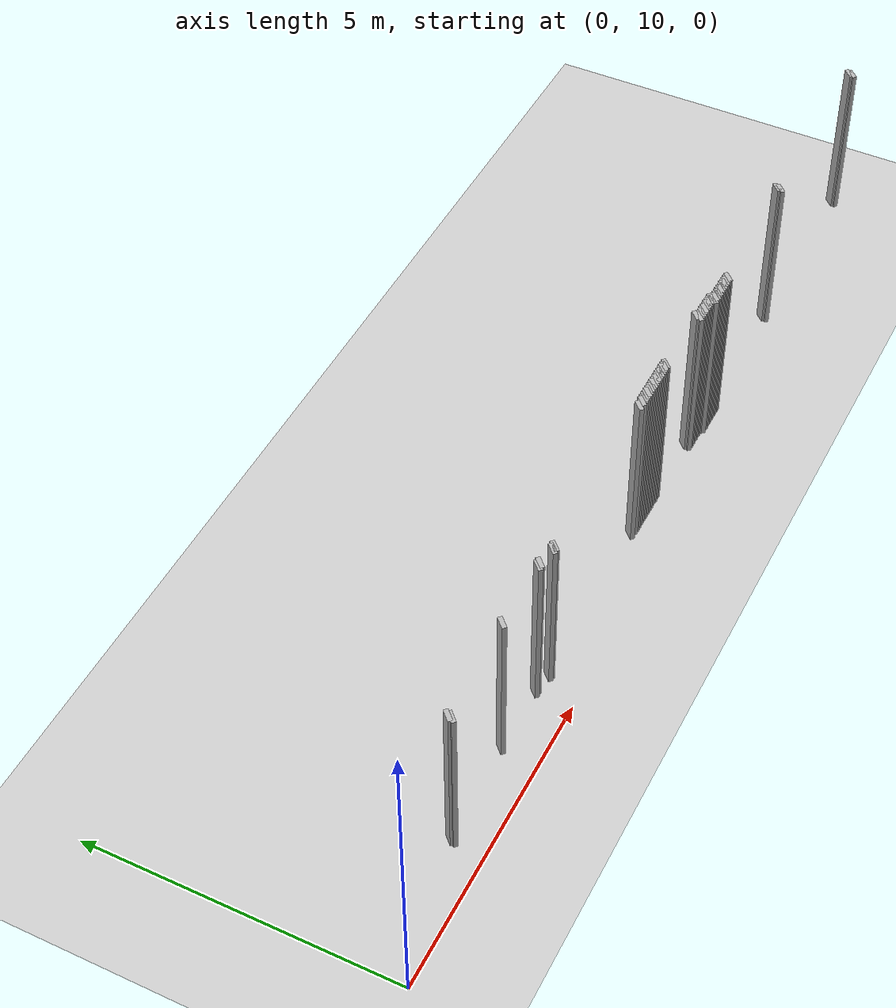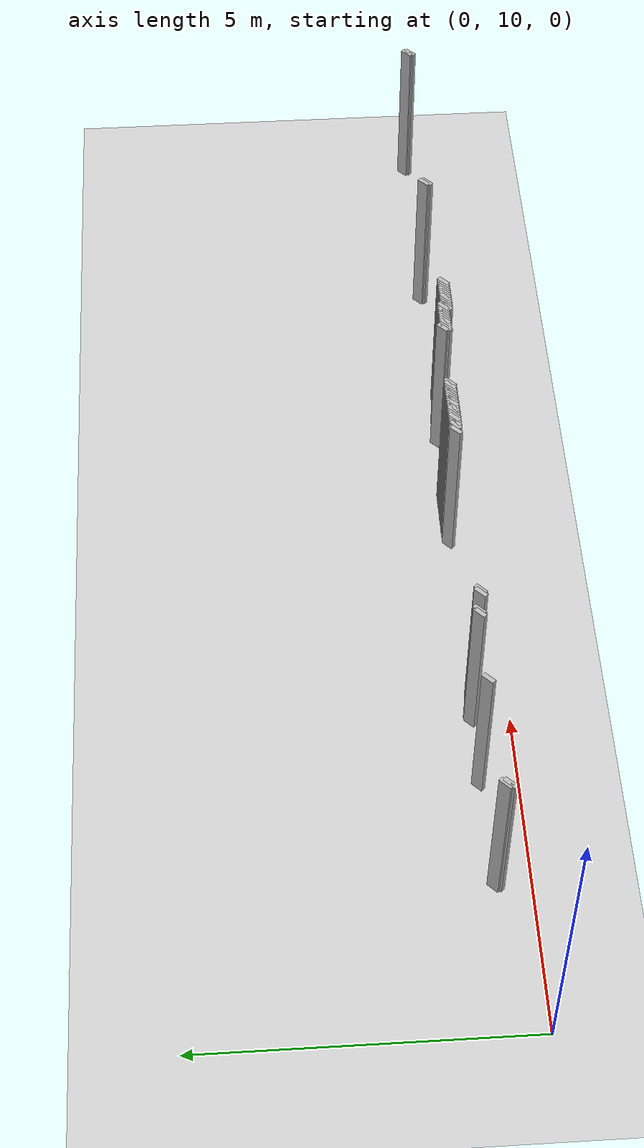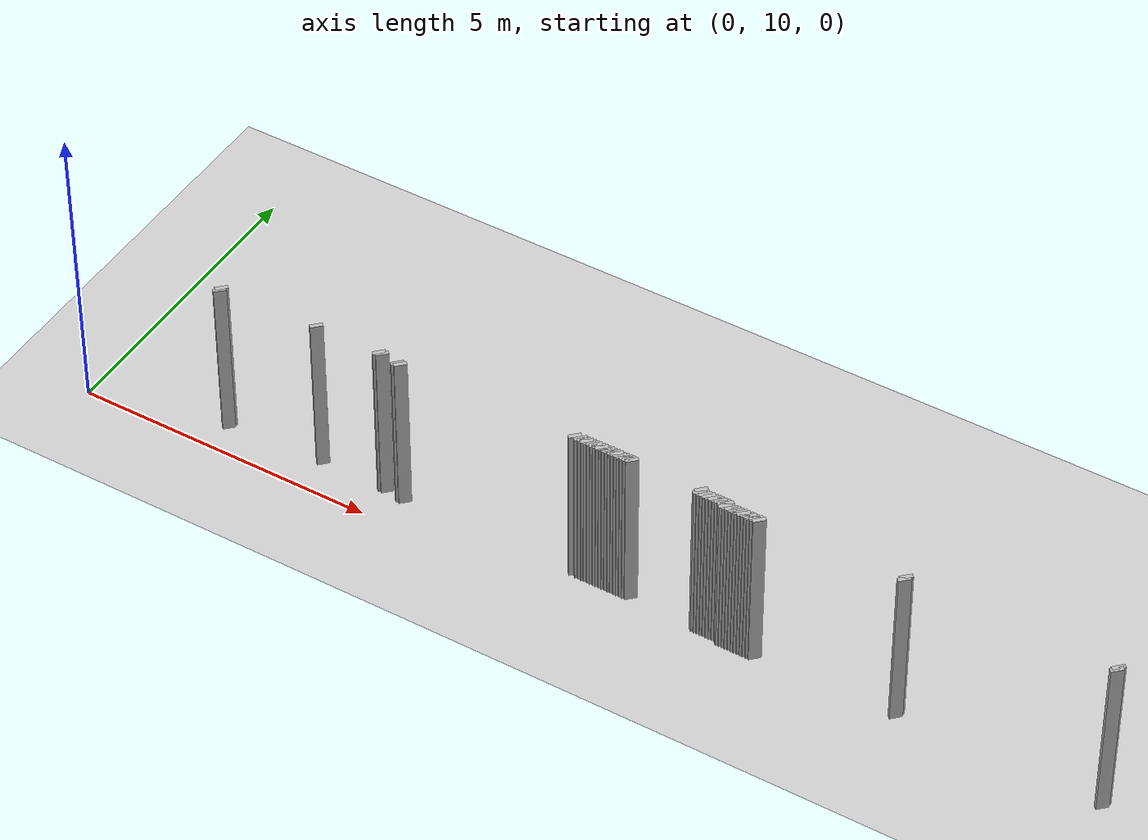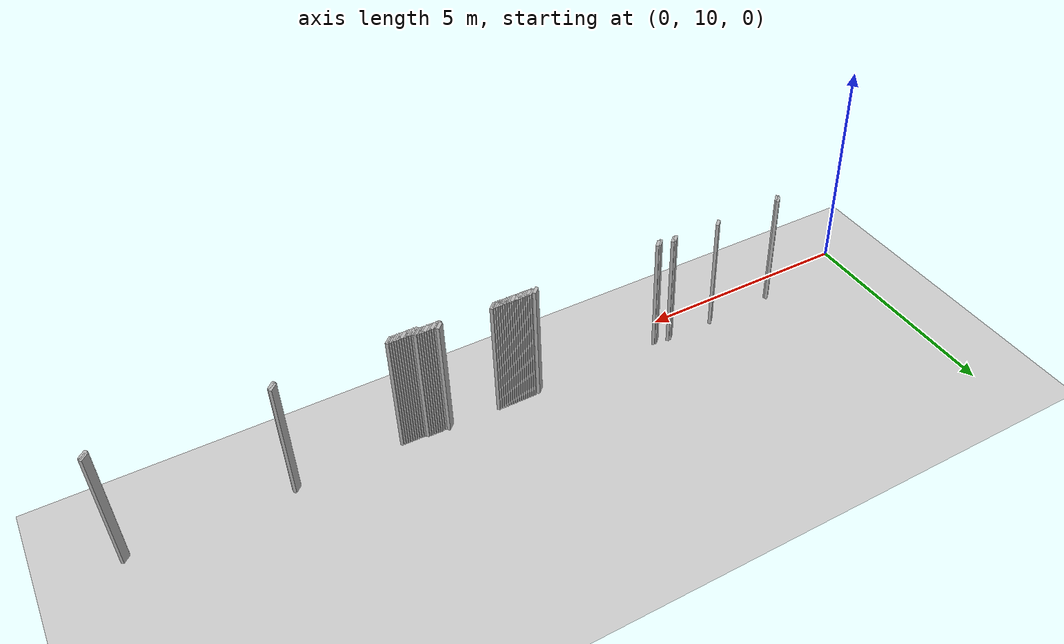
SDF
<sdf version="1.5">
 <world name="default">
  <include><uri>model://ground_plane</uri></include>
  <include><uri>model://sun</uri></include>
  <model name="grey_wall_1533">
   <static>1</static>
   <link name="link">
    <pose>3.9000000000000004 10.600000000000001  1.4 0 0 -0.7853981633974572</pose>
    <collision name="collision">
     <geometry><box><size>0.07071067811865513 .2  2.8</size></box></geometry>
    </collision>
    <visual name="visual">
     <cast_shadows>0</cast_shadows>
     <geometry><box><size>0.07071067811865513 .2  2.8</size></box></geometry>
    </visual>
   </link>
  </model>
  <model name="grey_wall_1534">
   <static>1</static>
   <link name="link">
    <pose>5.0 10.600000000000001  1.4 0 0 -0.7853981633974483</pose>
    <collision name="collision">
     <geometry><box><size>0.07071067811865576 .2  2.8</size></box></geometry>
    </collision>
    <visual name="visual">
     <cast_shadows>0</cast_shadows>
     <geometry><box><size>0.07071067811865576 .2  2.8</size></box></geometry>
    </visual>
   </link>
  </model>
  <model name="grey_wall_1535">
   <static>1</static>
   <link name="link">
    <pose>5.050000000000001 10.600000000000001  1.4 0 0 -0.7853981633974483</pose>
    <collision name="collision">
     <geometry><box><size>0.07071067811865576 .2  2.8</size></box></geometry>
    </collision>
    <visual name="visual">
     <cast_shadows>0</cast_shadows>
     <geometry><box><size>0.07071067811865576 .2  2.8</size></box></geometry>
    </visual>
   </link>
  </model>
  <model name="grey_wall_1536">
   <static>1</static>
   <link name="link">
    <pose>8.35 10.600000000000001  1.4 0 0 -0.7853981633974483</pose>
    <collision name="collision">
     <geometry><box><size>0.07071067811865576 .2  2.8</size></box></geometry>
    </collision>
    <visual name="visual">
     <cast_shadows>0</cast_shadows>
     <geometry><box><size>0.07071067811865576 .2  2.8</size></box></geometry>
    </visual>
   </link>
  </model>
  <model name="grey_wall_1537">
   <static>1</static>
   <link name="link">
    <pose>8.450000000000001 10.600000000000001  1.4 0 0 -0.7853981633974483</pose>
    <collision name="collision">
     <geometry><box><size>0.07071067811865576 .2  2.8</size></box></geometry>
    </collision>
    <visual name="visual">
     <cast_shadows>0</cast_shadows>
     <geometry><box><size>0.07071067811865576 .2  2.8</size></box></geometry>
    </visual>
   </link>
  </model>
  <model name="grey_wall_1538">
   <static>1</static>
   <link name="link">
    <pose>8.5 10.600000000000001  1.4 0 0 -0.7853981633974483</pose>
    <collision name="collision">
     <geometry><box><size>0.07071067811865576 .2  2.8</size></box></geometry>
    </collision>
    <visual name="visual">
     <cast_shadows>0</cast_shadows>
     <geometry><box><size>0.07071067811865576 .2  2.8</size></box></geometry>
    </visual>
   </link>
  </model>
  <model name="grey_wall_1539">
   <static>1</static>
   <link name="link">
    <pose>8.55 10.600000000000001  1.4 0 0 -0.7853981633974483</pose>
    <collision name="collision">
     <geometry><box><size>0.07071067811865576 .2  2.8</size></box></geometry>
    </collision>
    <visual name="visual">
     <cast_shadows>0</cast_shadows>
     <geometry><box><size>0.07071067811865576 .2  2.8</size></box></geometry>
    </visual>
   </link>
  </model>
  <model name="grey_wall_1540">
   <static>1</static>
   <link name="link">
    <pose>8.6 10.600000000000001  1.4 0 0 -0.7853981633974483</pose>
    <collision name="collision">
     <geometry><box><size>0.07071067811865576 .2  2.8</size></box></geometry>
    </collision>
    <visual name="visual">
     <cast_shadows>0</cast_shadows>
     <geometry><box><size>0.07071067811865576 .2  2.8</size></box></geometry>
    </visual>
   </link>
  </model>
  <model name="grey_wall_1541">
   <static>1</static>
   <link name="link">
    <pose>8.65 10.600000000000001  1.4 0 0 -0.7853981633974483</pose>
    <collision name="collision">
     <geometry><box><size>0.07071067811865576 .2  2.8</size></box></geometry>
    </collision>
    <visual name="visual">
     <cast_shadows>0</cast_shadows>
     <geometry><box><size>0.07071067811865576 .2  2.8</size></box></geometry>
    </visual>
   </link>
  </model>
  <model name="grey_wall_1542">
   <static>1</static>
   <link name="link">
    <pose>8.700000000000001 10.600000000000001  1.4 0 0 -0.7853981633974483</pose>
    <collision name="collision">
     <geometry><box><size>0.07071067811865576 .2  2.8</size></box></geometry>
    </collision>
    <visual name="visual">
     <cast_shadows>0</cast_shadows>
     <geometry><box><size>0.07071067811865576 .2  2.8</size></box></geometry>
    </visual>
   </link>
  </model>
  <model name="grey_wall_1543">
   <static>1</static>
   <link name="link">
    <pose>8.75 10.600000000000001  1.4 0 0 -0.7853981633974483</pose>
    <collision name="collision">
     <geometry><box><size>0.07071067811865576 .2  2.8</size></box></geometry>
    </collision>
    <visual name="visual">
     <cast_shadows>0</cast_shadows>
     <geometry><box><size>0.07071067811865576 .2  2.8</size></box></geometry>
    </visual>
   </link>
  </model>
  <model name="grey_wall_1544">
   <static>1</static>
   <link name="link">
    <pose>8.8 10.600000000000001  1.4 0 0 -0.7853981633974483</pose>
    <collision name="collision">
     <geometry><box><size>0.07071067811865576 .2  2.8</size></box></geometry>
    </collision>
    <visual name="visual">
     <cast_shadows>0</cast_shadows>
     <geometry><box><size>0.07071067811865576 .2  2.8</size></box></geometry>
    </visual>
   </link>
  </model>
  <model name="grey_wall_1545">
   <static>1</static>
   <link name="link">
    <pose>8.85 10.600000000000001  1.4 0 0 -0.7853981633974483</pose>
    <collision name="collision">
     <geometry><box><size>0.07071067811865576 .2  2.8</size></box></geometry>
    </collision>
    <visual name="visual">
     <cast_shadows>0</cast_shadows>
     <geometry><box><size>0.07071067811865576 .2  2.8</size></box></geometry>
    </visual>
   </link>
  </model>
  <model name="grey_wall_1546">
   <static>1</static>
   <link name="link">
    <pose>8.9 10.600000000000001  1.4 0 0 -0.7853981633974483</pose>
    <collision name="collision">
     <geometry><box><size>0.07071067811865576 .2  2.8</size></box></geometry>
    </collision>
    <visual name="visual">
     <cast_shadows>0</cast_shadows>
     <geometry><box><size>0.07071067811865576 .2  2.8</size></box></geometry>
    </visual>
   </link>
  </model>
  <model name="grey_wall_1547">
   <static>1</static>
   <link name="link">
    <pose>8.950000000000001 10.600000000000001  1.4 0 0 -0.7853981633974483</pose>
    <collision name="collision">
     <geometry><box><size>0.07071067811865576 .2  2.8</size></box></geometry>
    </collision>
    <visual name="visual">
     <cast_shadows>0</cast_shadows>
     <geometry><box><size>0.07071067811865576 .2  2.8</size></box></geometry>
    </visual>
   </link>
  </model>
  <model name="grey_wall_1548">
   <static>1</static>
   <link name="link">
    <pose>9.0 10.600000000000001  1.4 0 0 -0.7853981633974483</pose>
    <collision name="collision">
     <geometry><box><size>0.07071067811865576 .2  2.8</size></box></geometry>
    </collision>
    <visual name="visual">
     <cast_shadows>0</cast_shadows>
     <geometry><box><size>0.07071067811865576 .2  2.8</size></box></geometry>
    </visual>
   </link>
  </model>
  <model name="grey_wall_1549">
   <static>1</static>
   <link name="link">
    <pose>9.05 10.600000000000001  1.4 0 0 -0.7853981633974483</pose>
    <collision name="collision">
     <geometry><box><size>0.07071067811865576 .2  2.8</size></box></geometry>
    </collision>
    <visual name="visual">
     <cast_shadows>0</cast_shadows>
     <geometry><box><size>0.07071067811865576 .2  2.8</size></box></geometry>
    </visual>
   </link>
  </model>
  <model name="grey_wall_1550">
   <static>1</static>
   <link name="link">
    <pose>9.1 10.600000000000001  1.4 0 0 -0.7853981633974483</pose>
    <collision name="collision">
     <geometry><box><size>0.07071067811865576 .2  2.8</size></box></geometry>
    </collision>
    <visual name="visual">
     <cast_shadows>0</cast_shadows>
     <geometry><box><size>0.07071067811865576 .2  2.8</size></box></geometry>
    </visual>
   </link>
  </model>
  <model name="grey_wall_1551">
   <static>1</static>
   <link name="link">
    <pose>9.15 10.600000000000001  1.4 0 0 -0.7853981633974483</pose>
    <collision name="collision">
     <geometry><box><size>0.07071067811865576 .2  2.8</size></box></geometry>
    </collision>
    <visual name="visual">
     <cast_shadows>0</cast_shadows>
     <geometry><box><size>0.07071067811865576 .2  2.8</size></box></geometry>
    </visual>
   </link>
  </model>
  <model name="grey_wall_1552">
   <static>1</static>
   <link name="link">
    <pose>9.200000000000001 10.600000000000001  1.4 0 0 -0.7853981633974483</pose>
    <collision name="collision">
     <geometry><box><size>0.07071067811865576 .2  2.8</size></box></geometry>
    </collision>
    <visual name="visual">
     <cast_shadows>0</cast_shadows>
     <geometry><box><size>0.07071067811865576 .2  2.8</size></box></geometry>
    </visual>
   </link>
  </model>
  <model name="grey_wall_1553">
   <static>1</static>
   <link name="link">
    <pose>9.25 10.600000000000001  1.4 0 0 -0.7853981633974483</pose>
    <collision name="collision">
     <geometry><box><size>0.07071067811865576 .2  2.8</size></box></geometry>
    </collision>
    <visual name="visual">
     <cast_shadows>0</cast_shadows>
     <geometry><box><size>0.07071067811865576 .2  2.8</size></box></geometry>
    </visual>
   </link>
  </model>
  <model name="grey_wall_1554">
   <static>1</static>
   <link name="link">
    <pose>9.3 10.600000000000001  1.4 0 0 -0.7853981633974483</pose>
    <collision name="collision">
     <geometry><box><size>0.07071067811865576 .2  2.8</size></box></geometry>
    </collision>
    <visual name="visual">
     <cast_shadows>0</cast_shadows>
     <geometry><box><size>0.07071067811865576 .2  2.8</size></box></geometry>
    </visual>
   </link>
  </model>
  <model name="grey_wall_1555">
   <static>1</static>
   <link name="link">
    <pose>10.450000000000001 10.600000000000001  1.4 0 0 -0.7853981633974483</pose>
    <collision name="collision">
     <geometry><box><size>0.07071067811865576 .2  2.8</size></box></geometry>
    </collision>
    <visual name="visual">
     <cast_shadows>0</cast_shadows>
     <geometry><box><size>0.07071067811865576 .2  2.8</size></box></geometry>
    </visual>
   </link>
  </model>
  <model name="grey_wall_1556">
   <static>1</static>
   <link name="link">
    <pose>13.75 10.600000000000001  1.4 0 0 -0.7853981633974483</pose>
    <collision name="collision">
     <geometry><box><size>0.07071067811865576 .2  2.8</size></box></geometry>
    </collision>
    <visual name="visual">
     <cast_shadows>0</cast_shadows>
     <geometry><box><size>0.07071067811865576 .2  2.8</size></box></geometry>
    </visual>
   </link>
  </model>
  <model name="grey_wall_1557">
   <static>1</static>
   <link name="link">
    <pose>17.05 10.600000000000001  1.4 0 0 -0.7853981633974838</pose>
    <collision name="collision">
     <geometry><box><size>0.07071067811865325 .2  2.8</size></box></geometry>
    </collision>
    <visual name="visual">
     <cast_shadows>0</cast_shadows>
     <geometry><box><size>0.07071067811865325 .2  2.8</size></box></geometry>
    </visual>
   </link>
  </model>
  <model name="grey_wall_1558">
   <static>1</static>
   <link name="link">
    <pose>2.25 10.55  1.4 0 0 -0.7853981633974572</pose>
    <collision name="collision">
     <geometry><box><size>0.07071067811865513 .2  2.8</size></box></geometry>
    </collision>
    <visual name="visual">
     <cast_shadows>0</cast_shadows>
     <geometry><box><size>0.07071067811865513 .2  2.8</size></box></geometry>
    </visual>
   </link>
  </model>
  <model name="grey_wall_1559">
   <static>1</static>
   <link name="link">
    <pose>5.3500000000000005 10.55  1.4 0 0 -0.7853981633974483</pose>
    <collision name="collision">
     <geometry><box><size>0.07071067811865576 .2  2.8</size></box></geometry>
    </collision>
    <visual name="visual">
     <cast_shadows>0</cast_shadows>
     <geometry><box><size>0.07071067811865576 .2  2.8</size></box></geometry>
    </visual>
   </link>
  </model>
  <model name="grey_wall_1560">
   <static>1</static>
   <link name="link">
    <pose>5.4 10.55  1.4 0 0 -0.7853981633974483</pose>
    <collision name="collision">
     <geometry><box><size>0.07071067811865576 .2  2.8</size></box></geometry>
    </collision>
    <visual name="visual">
     <cast_shadows>0</cast_shadows>
     <geometry><box><size>0.07071067811865576 .2  2.8</size></box></geometry>
    </visual>
   </link>
  </model>
  <model name="grey_wall_1561">
   <static>1</static>
   <link name="link">
    <pose>10.450000000000001 10.55  1.4 0 0 -0.7853981633974483</pose>
    <collision name="collision">
     <geometry><box><size>0.07071067811865576 .2  2.8</size></box></geometry>
    </collision>
    <visual name="visual">
     <cast_shadows>0</cast_shadows>
     <geometry><box><size>0.07071067811865576 .2  2.8</size></box></geometry>
    </visual>
   </link>
  </model>
  <model name="grey_wall_1562">
   <static>1</static>
   <link name="link">
    <pose>10.5 10.55  1.4 0 0 -0.7853981633974483</pose>
    <collision name="collision">
     <geometry><box><size>0.07071067811865576 .2  2.8</size></box></geometry>
    </collision>
    <visual name="visual">
     <cast_shadows>0</cast_shadows>
     <geometry><box><size>0.07071067811865576 .2  2.8</size></box></geometry>
    </visual>
   </link>
  </model>
  <model name="grey_wall_1563">
   <static>1</static>
   <link name="link">
    <pose>10.55 10.55  1.4 0 0 -0.7853981633974483</pose>
    <collision name="collision">
     <geometry><box><size>0.07071067811865576 .2  2.8</size></box></geometry>
    </collision>
    <visual name="visual">
     <cast_shadows>0</cast_shadows>
     <geometry><box><size>0.07071067811865576 .2  2.8</size></box></geometry>
    </visual>
   </link>
  </model>
  <model name="grey_wall_1564">
   <static>1</static>
   <link name="link">
    <pose>10.600000000000001 10.55  1.4 0 0 -0.7853981633974483</pose>
    <collision name="collision">
     <geometry><box><size>0.07071067811865576 .2  2.8</size></box></geometry>
    </collision>
    <visual name="visual">
     <cast_shadows>0</cast_shadows>
     <geometry><box><size>0.07071067811865576 .2  2.8</size></box></geometry>
    </visual>
   </link>
  </model>
  <model name="grey_wall_1565">
   <static>1</static>
   <link name="link">
    <pose>10.65 10.55  1.4 0 0 -0.7853981633974483</pose>
    <collision name="collision">
     <geometry><box><size>0.07071067811865576 .2  2.8</size></box></geometry>
    </collision>
    <visual name="visual">
     <cast_shadows>0</cast_shadows>
     <geometry><box><size>0.07071067811865576 .2  2.8</size></box></geometry>
    </visual>
   </link>
  </model>
  <model name="grey_wall_1566">
   <static>1</static>
   <link name="link">
    <pose>10.700000000000001 10.55  1.4 0 0 -0.7853981633974483</pose>
    <collision name="collision">
     <geometry><box><size>0.07071067811865576 .2  2.8</size></box></geometry>
    </collision>
    <visual name="visual">
     <cast_shadows>0</cast_shadows>
     <geometry><box><size>0.07071067811865576 .2  2.8</size></box></geometry>
    </visual>
   </link>
  </model>
  <model name="grey_wall_1567">
   <static>1</static>
   <link name="link">
    <pose>10.75 10.55  1.4 0 0 -0.7853981633974483</pose>
    <collision name="collision">
     <geometry><box><size>0.07071067811865576 .2  2.8</size></box></geometry>
    </collision>
    <visual name="visual">
     <cast_shadows>0</cast_shadows>
     <geometry><box><size>0.07071067811865576 .2  2.8</size></box></geometry>
    </visual>
   </link>
  </model>
  <model name="grey_wall_1568">
   <static>1</static>
   <link name="link">
    <pose>10.8 10.55  1.4 0 0 -0.7853981633974483</pose>
    <collision name="collision">
     <geometry><box><size>0.07071067811865576 .2  2.8</size></box></geometry>
    </collision>
    <visual name="visual">
     <cast_shadows>0</cast_shadows>
     <geometry><box><size>0.07071067811865576 .2  2.8</size></box></geometry>
    </visual>
   </link>
  </model>
  <model name="grey_wall_1569">
   <static>1</static>
   <link name="link">
    <pose>10.850000000000001 10.55  1.4 0 0 -0.7853981633974483</pose>
    <collision name="collision">
     <geometry><box><size>0.07071067811865576 .2  2.8</size></box></geometry>
    </collision>
    <visual name="visual">
     <cast_shadows>0</cast_shadows>
     <geometry><box><size>0.07071067811865576 .2  2.8</size></box></geometry>
    </visual>
   </link>
  </model>
  <model name="grey_wall_1570">
   <static>1</static>
   <link name="link">
    <pose>10.9 10.55  1.4 0 0 -0.7853981633974483</pose>
    <collision name="collision">
     <geometry><box><size>0.07071067811865576 .2  2.8</size></box></geometry>
    </collision>
    <visual name="visual">
     <cast_shadows>0</cast_shadows>
     <geometry><box><size>0.07071067811865576 .2  2.8</size></box></geometry>
    </visual>
   </link>
  </model>
  <model name="grey_wall_1571">
   <static>1</static>
   <link name="link">
    <pose>13.75 10.55  1.4 0 0 -0.7853981633974483</pose>
    <collision name="collision">
     <geometry><box><size>0.07071067811865576 .2  2.8</size></box></geometry>
    </collision>
    <visual name="visual">
     <cast_shadows>0</cast_shadows>
     <geometry><box><size>0.07071067811865576 .2  2.8</size></box></geometry>
    </visual>
   </link>
  </model>
  <model name="grey_wall_1572">
   <static>1</static>
   <link name="link">
    <pose>17.05 10.55  1.4 0 0 -0.7853981633974838</pose>
    <collision name="collision">
     <geometry><box><size>0.07071067811865325 .2  2.8</size></box></geometry>
    </collision>
    <visual name="visual">
     <cast_shadows>0</cast_shadows>
     <geometry><box><size>0.07071067811865325 .2  2.8</size></box></geometry>
    </visual>
   </link>
  </model>
  <model name="grey_wall_1573">
   <static>1</static>
   <link name="link">
    <pose>2.25 10.5  1.4 0 0 -0.7853981633974572</pose>
    <collision name="collision">
     <geometry><box><size>0.07071067811865513 .2  2.8</size></box></geometry>
    </collision>
    <visual name="visual">
     <cast_shadows>0</cast_shadows>
     <geometry><box><size>0.07071067811865513 .2  2.8</size></box></geometry>
    </visual>
   </link>
  </model>
  <model name="grey_wall_1574">
   <static>1</static>
   <link name="link">
    <pose>10.9 10.5  1.4 0 0 -0.7853981633974483</pose>
    <collision name="collision">
     <geometry><box><size>0.07071067811865576 .2  2.8</size></box></geometry>
    </collision>
    <visual name="visual">
     <cast_shadows>0</cast_shadows>
     <geometry><box><size>0.07071067811865576 .2  2.8</size></box></geometry>
    </visual>
   </link>
  </model>
  <model name="grey_wall_1575">
   <static>1</static>
   <link name="link">
    <pose>10.950000000000001 10.5  1.4 0 0 -0.7853981633974483</pose>
    <collision name="collision">
     <geometry><box><size>0.07071067811865576 .2  2.8</size></box></geometry>
    </collision>
    <visual name="visual">
     <cast_shadows>0</cast_shadows>
     <geometry><box><size>0.07071067811865576 .2  2.8</size></box></geometry>
    </visual>
   </link>
  </model>
  <model name="grey_wall_1576">
   <static>1</static>
   <link name="link">
    <pose>11.0 10.5  1.4 0 0 -0.7853981633974483</pose>
    <collision name="collision">
     <geometry><box><size>0.07071067811865576 .2  2.8</size></box></geometry>
    </collision>
    <visual name="visual">
     <cast_shadows>0</cast_shadows>
     <geometry><box><size>0.07071067811865576 .2  2.8</size></box></geometry>
    </visual>
   </link>
  </model>
  <model name="grey_wall_1577">
   <static>1</static>
   <link name="link">
    <pose>11.05 10.5  1.4 0 0 -0.7853981633974483</pose>
    <collision name="collision">
     <geometry><box><size>0.07071067811865576 .2  2.8</size></box></geometry>
    </collision>
    <visual name="visual">
     <cast_shadows>0</cast_shadows>
     <geometry><box><size>0.07071067811865576 .2  2.8</size></box></geometry>
    </visual>
   </link>
  </model>
  <model name="grey_wall_1578">
   <static>1</static>
   <link name="link">
    <pose>11.100000000000001 10.5  1.4 0 0 -0.7853981633974483</pose>
    <collision name="collision">
     <geometry><box><size>0.07071067811865576 .2  2.8</size></box></geometry>
    </collision>
    <visual name="visual">
     <cast_shadows>0</cast_shadows>
     <geometry><box><size>0.07071067811865576 .2  2.8</size></box></geometry>
    </visual>
   </link>
  </model>
  <model name="grey_wall_1579">
   <static>1</static>
   <link name="link">
    <pose>11.15 10.5  1.4 0 0 -0.7853981633974483</pose>
    <collision name="collision">
     <geometry><box><size>0.07071067811865576 .2  2.8</size></box></geometry>
    </collision>
    <visual name="visual">
     <cast_shadows>0</cast_shadows>
     <geometry><box><size>0.07071067811865576 .2  2.8</size></box></geometry>
    </visual>
   </link>
  </model>
  <model name="grey_wall_1580">
   <static>1</static>
   <link name="link">
    <pose>11.200000000000001 10.5  1.4 0 0 -0.7853981633974483</pose>
    <collision name="collision">
     <geometry><box><size>0.07071067811865576 .2  2.8</size></box></geometry>
    </collision>
    <visual name="visual">
     <cast_shadows>0</cast_shadows>
     <geometry><box><size>0.07071067811865576 .2  2.8</size></box></geometry>
    </visual>
   </link>
  </model>
  <model name="grey_wall_1581">
   <static>1</static>
   <link name="link">
    <pose>11.25 10.5  1.4 0 0 -0.7853981633974483</pose>
    <collision name="collision">
     <geometry><box><size>0.07071067811865576 .2  2.8</size></box></geometry>
    </collision>
    <visual name="visual">
     <cast_shadows>0</cast_shadows>
     <geometry><box><size>0.07071067811865576 .2  2.8</size></box></geometry>
    </visual>
   </link>
  </model>
  <model name="grey_wall_1582">
   <static>1</static>
   <link name="link">
    <pose>11.3 10.5  1.4 0 0 -0.7853981633974483</pose>
    <collision name="collision">
     <geometry><box><size>0.07071067811865576 .2  2.8</size></box></geometry>
    </collision>
    <visual name="visual">
     <cast_shadows>0</cast_shadows>
     <geometry><box><size>0.07071067811865576 .2  2.8</size></box></geometry>
    </visual>
   </link>
  </model>
  <model name="grey_wall_1583">
   <static>1</static>
   <link name="link">
    <pose>11.350000000000001 10.5  1.4 0 0 -0.7853981633974483</pose>
    <collision name="collision">
     <geometry><box><size>0.07071067811865576 .2  2.8</size></box></geometry>
    </collision>
    <visual name="visual">
     <cast_shadows>0</cast_shadows>
     <geometry><box><size>0.07071067811865576 .2  2.8</size></box></geometry>
    </visual>
   </link>
  </model>
  <model name="grey_wall_1584">
   <static>1</static>
   <link name="link">
    <pose>11.4 10.5  1.4 0 0 -0.7853981633974483</pose>
    <collision name="collision">
     <geometry><box><size>0.07071067811865576 .2  2.8</size></box></geometry>
    </collision>
    <visual name="visual">
     <cast_shadows>0</cast_shadows>
     <geometry><box><size>0.07071067811865576 .2  2.8</size></box></geometry>
    </visual>
   </link>
  </model>
  <model name="grey_wall_1585">
   <static>1</static>
   <link name="link">
    <pose>11.450000000000001 10.5  1.4 0 0 -0.7853981633974483</pose>
    <collision name="collision">
     <geometry><box><size>0.07071067811865576 .2  2.8</size></box></geometry>
    </collision>
    <visual name="visual">
     <cast_shadows>0</cast_shadows>
     <geometry><box><size>0.07071067811865576 .2  2.8</size></box></geometry>
    </visual>
   </link>
  </model>
 </world>
</sdf>
